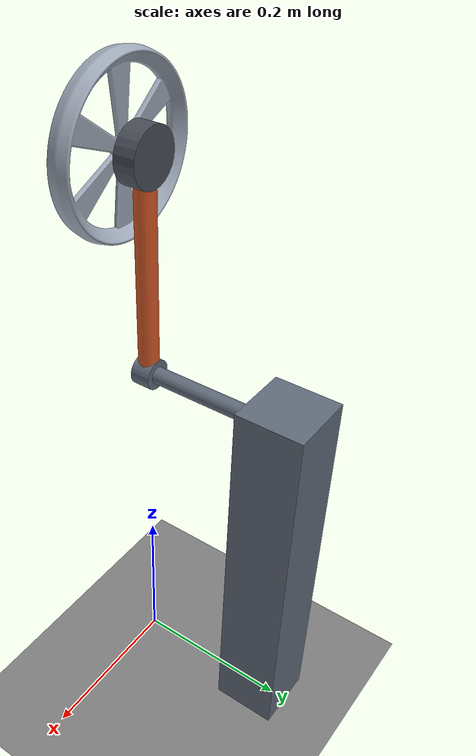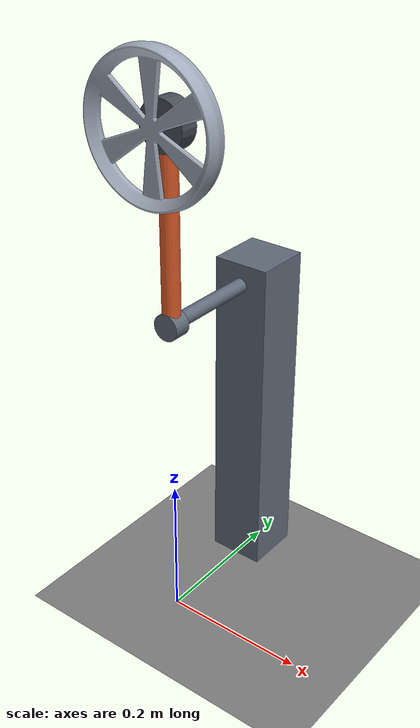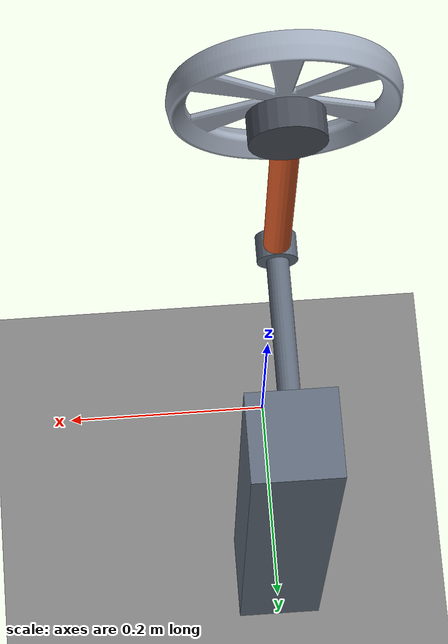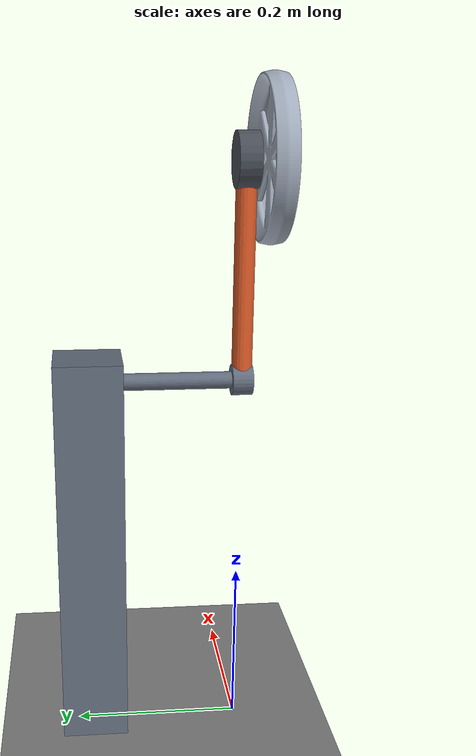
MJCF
<mujoco model="flywheel pendulum">
  <compiler angle="degree" meshdir="assets" inertiafromgeom="true"/>
  <option timestep="0.002" gravity="0 0 -9.81"/>
  <statistic center="0 0 0.4" extent="0.8"/>

  <visual>
    <headlight ambient="0.35 0.35 0.35" diffuse="0.8 0.8 0.8"/>
  </visual>

  <asset>
    <texture name="checker" type="2d" builtin="checker"
             rgb1="0.15 0.15 0.15" rgb2="0.85 0.85 0.85"
             width="256" height="256"/>
    <material name="checker-floor" texture="checker"
              texrepeat="2 2" texuniform="true" reflectance="0.1"/>
    <material name="stand-metal" rgba="0.38 0.42 0.48 1"
              specular="0.50" shininess="0.40"/>
    <material name="beam-material" rgba="0.85 0.35 0.15 1"/>
    <material name="motor-metal" rgba="0.28 0.30 0.34 1"
              specular="0.75" shininess="0.65"/>
    <material name="wheel-metal" rgba="0.62 0.66 0.72 1"
              specular="0.95" shininess="0.85"/>
    <mesh name="wheel-mesh" file="wheel.stl"
          scale="0.001 0.001 0.001" inertia="exact"/>
  </asset>

  <worldbody>
    <light name="key-light" pos="-0.4 -0.5 1.2" directional="true"
           dir="0.3 0.4 -1" diffuse="0.75 0.75 0.75"/>
    <geom name="floor" type="plane" size="1 1 0.1"
          material="checker-floor"/>

    <!-- Static support, offset from the pendulum's X-Z motion plane. -->
    <geom name="support-post" type="box" pos="0 0.18 0.24"
          size="0.04 0.04 0.24" material="stand-metal"/>
    <geom name="support-axle" type="cylinder"
          fromto="0 0 0.45 0 0.14 0.45" size="0.01"
          material="stand-metal"/>
    <geom name="pivot-cap" type="cylinder"
          fromto="0 -0.012 0.45 0 0.012 0.45" size="0.018"
          contype="0" conaffinity="0" material="stand-metal"/>

    <!-- q_p = 0 is upright; both hinges rotate around the world/local Y axis. -->
    <body name="pendulum" pos="0 0 0.45">
      <joint name="pivot" type="hinge" axis="0 1 0" damping="0.0002"/>
      <geom name="beam" type="capsule" fromto="0 0 0 0 0 0.25"
            size="0.012" mass="0.064" contype="0" conaffinity="0"
            material="beam-material"/>
      <geom name="motor-housing" type="cylinder" pos="0 0 0.25"
            euler="90 0 0" size="0.0315 0.0125" mass="0.193"
            contype="0" conaffinity="0" material="motor-metal"/>

      <!-- The wheel hinge is relative to the pendulum body. -->
      <body name="wheel" pos="0 0 0.25">
        <joint name="wheel-hinge" type="hinge" axis="0 1 0" damping="0.005"/>
        <!-- Source STL axle X -> model axle Y; offset places it outside the housing. -->
        <geom name="wheel-visual" type="mesh" mesh="wheel-mesh"
              pos="0 -0.027 0" euler="0 0 90" density="1250"
              contype="0" conaffinity="0" material="wheel-metal"/>
      </body>
    </body>
  </worldbody>
</mujoco>
